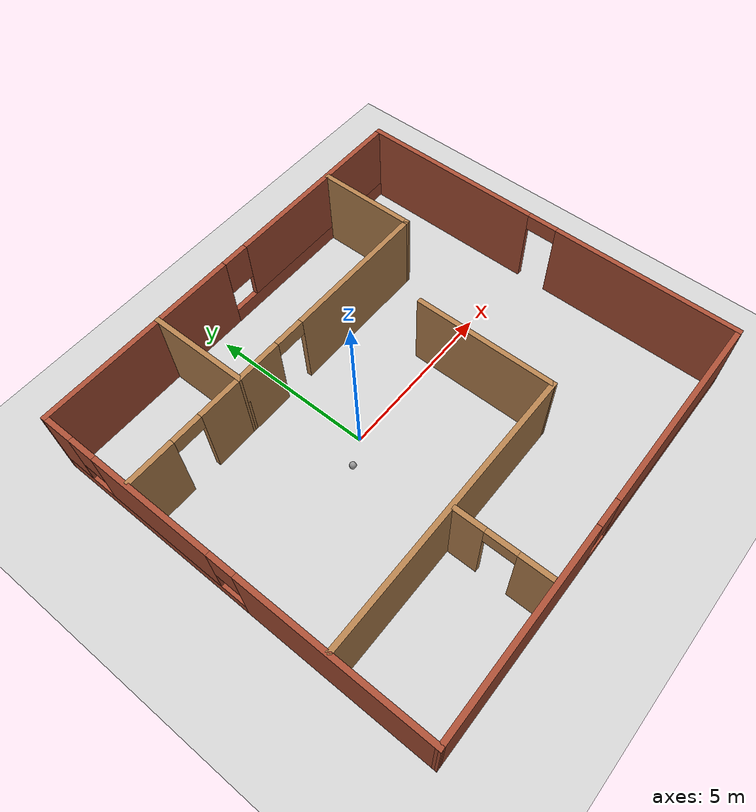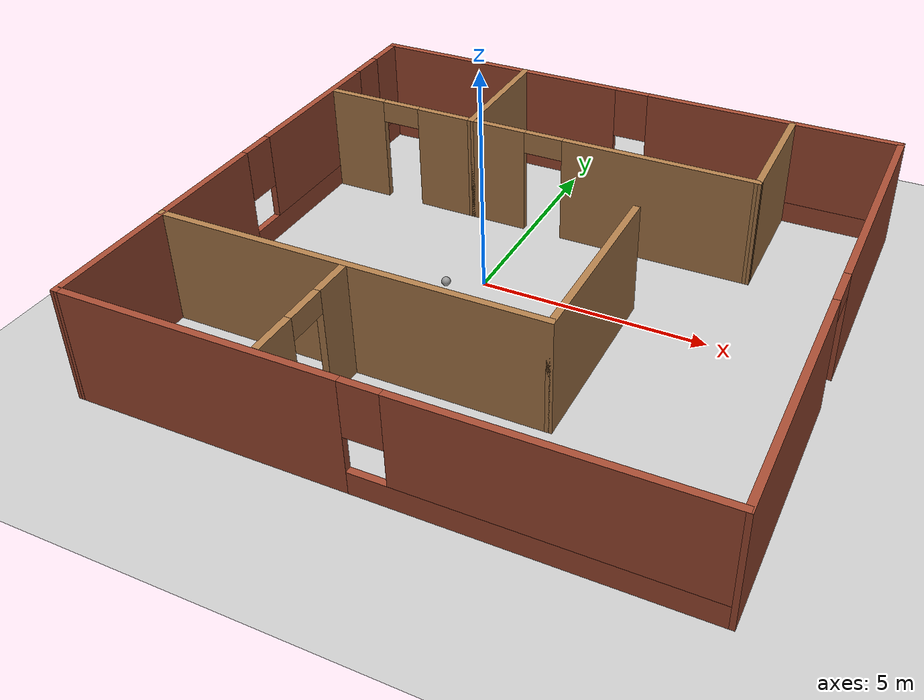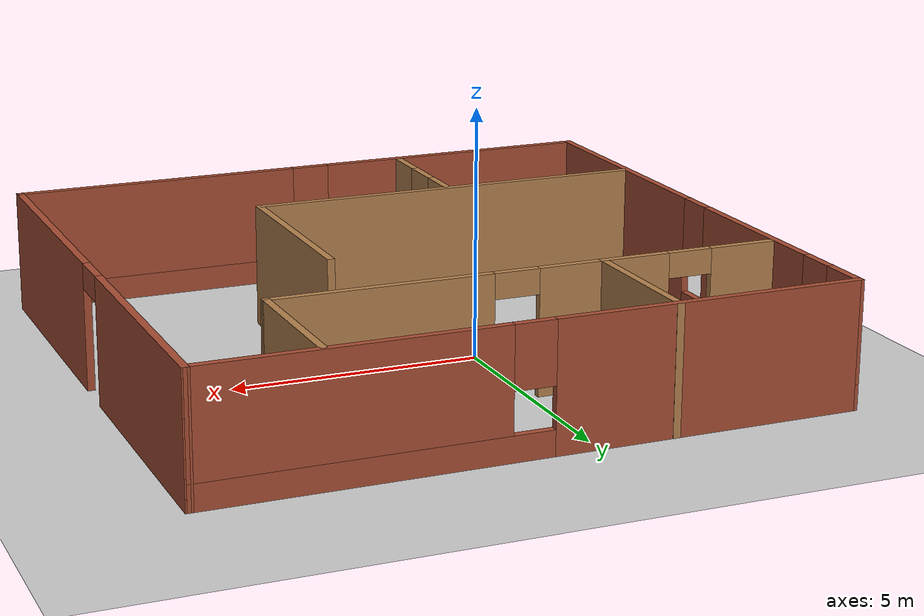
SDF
<sdf version="1.6">
 <world name="default">
  <light name="sun" type="directional">
   <pose>0 0 10 0 -0 0</pose>
   <diffuse>0.8 0.8 0.8 1</diffuse>
   <specular>0.2 0.2 0.2 1</specular>
   <attenuation>
    <range>1000</range>
    <constant>0.9</constant>
    <linear>0.01</linear>
    <quadratic>0.001</quadratic>
   </attenuation>
   <direction>-0.5 0.1 -0.9</direction>
  </light>
  <model name="ground_plane">
   <static>1</static>
   <link name="link">
    <collision name="collision">
     <geometry><plane><normal>0 0 1</normal><size>100 100</size></plane></geometry>
     <surface><friction><ode><mu>100</mu><mu2>50</mu2></ode></friction></surface>
    </collision>
    <visual name="visual">
     <cast_shadows>0</cast_shadows>
     <geometry><plane><normal>0 0 1</normal><size>100 100</size></plane></geometry>
     <material>
      <script><uri>file://media/materials/scripts/gazebo.material</uri><name>Gazebo/Grey</name></script>
     </material>
    </visual>
   </link>
  </model>
  <gravity>0 0 -9.8</gravity>
  <magnetic_field>6e-06 2.3e-05 -4.2e-05</magnetic_field>
  <atmosphere type="adiabatic"/>
  <physics name="default_physics" default="0" type="ode">
   <max_step_size>0.001</max_step_size>
   <real_time_factor>1</real_time_factor>
   <real_time_update_rate>1000</real_time_update_rate>
  </physics>
  <scene><ambient>0.4 0.4 0.4 1</ambient><background>0.7 0.7 0.7 1</background><shadows>1</shadows></scene>
  <spherical_coordinates>
   <surface_model>EARTH_WGS84</surface_model>
   <latitude_deg>0</latitude_deg>
   <longitude_deg>0</longitude_deg>
   <elevation>0</elevation>
   <heading_deg>0</heading_deg>
  </spherical_coordinates>
  <model name="new_world">
   <pose>1.12409 -0.574454 0 0 -0 0</pose>
   <link name="Wall_0">
    <pose>-6.31701 -0.025102 0 0 -0 1.5708</pose>
    <visual name="Wall_0_Visual_0">
     <pose>-3.18031 0 1.25 0 -0 0</pose>
     <geometry><box><size>5.63937 0.15 2.5</size></box></geometry>
     <material>
      <script><uri>file://media/materials/scripts/gazebo.material</uri><name>Gazebo/Bricks</name></script>
      <ambient>1 1 1 1</ambient>
     </material>
     <meta><layer>0</layer></meta>
    </visual>
    <collision name="Wall_0_Collision_0">
     <geometry><box><size>5.63937 0.15 2.5</size></box></geometry>
     <pose>-3.18031 0 1.25 0 -0 0</pose>
    </collision>
    <visual name="Wall_0_Visual_1">
     <pose>2.81969 0 0.25 0 -0 0</pose>
     <geometry><box><size>6.36063 0.15 0.5</size></box></geometry>
     <material>
      <script><uri>file://media/materials/scripts/gazebo.material</uri><name>Gazebo/Bricks</name></script>
      <ambient>1 1 1 1</ambient>
     </material>
     <meta><layer>0</layer></meta>
    </visual>
    <collision name="Wall_0_Collision_1">
     <geometry><box><size>6.36063 0.15 0.5</size></box></geometry>
     <pose>2.81969 0 0.25 0 -0 0</pose>
    </collision>
    <visual name="Wall_0_Visual_2">
     <pose>2.31369 0 1.5 0 -0 0</pose>
     <geometry><box><size>3.74863 0.15 2</size></box></geometry>
     <material>
      <script><uri>file://media/materials/scripts/gazebo.material</uri><name>Gazebo/Bricks</name></script>
      <ambient>1 1 1 1</ambient>
     </material>
     <meta><layer>0</layer></meta>
    </visual>
    <collision name="Wall_0_Collision_2">
     <geometry><box><size>3.74863 0.15 2</size></box></geometry>
     <pose>2.31369 0 1.5 0 -0 0</pose>
    </collision>
    <visual name="Wall_0_Visual_3">
     <pose>5.494 0 1.5 0 -0 0</pose>
     <geometry><box><size>1.012 0.15 2</size></box></geometry>
     <material>
      <script><uri>file://media/materials/scripts/gazebo.material</uri><name>Gazebo/Bricks</name></script>
      <ambient>1 1 1 1</ambient>
     </material>
     <meta><layer>0</layer></meta>
    </visual>
    <collision name="Wall_0_Collision_3">
     <geometry><box><size>1.012 0.15 2</size></box></geometry>
     <pose>5.494 0 1.5 0 -0 0</pose>
    </collision>
    <visual name="Wall_0_Visual_4">
     <pose>0.039369 0 1.9 0 -0 0</pose>
     <geometry><box><size>0.8 0.15 1.2</size></box></geometry>
     <material>
      <script><uri>file://media/materials/scripts/gazebo.material</uri><name>Gazebo/Bricks</name></script>
      <ambient>1 1 1 1</ambient>
     </material>
     <meta><layer>0</layer></meta>
    </visual>
    <collision name="Wall_0_Collision_4">
     <geometry><box><size>0.8 0.15 1.2</size></box></geometry>
     <pose>0.039369 0 1.9 0 -0 0</pose>
    </collision>
    <visual name="Wall_0_Visual_5">
     <pose>4.588 0 1.9 0 -0 0</pose>
     <geometry><box><size>0.8 0.15 1.2</size></box></geometry>
     <material>
      <script><uri>file://media/materials/scripts/gazebo.material</uri><name>Gazebo/Bricks</name></script>
      <ambient>1 1 1 1</ambient>
     </material>
     <meta><layer>0</layer></meta>
    </visual>
    <collision name="Wall_0_Collision_5">
     <geometry><box><size>0.8 0.15 1.2</size></box></geometry>
     <pose>4.588 0 1.9 0 -0 0</pose>
    </collision>
   </link>
   <link name="Wall_10">
    <pose>-4.42868 3.04669 0 0 -0 0</pose>
    <visual name="Wall_10_Visual_0">
     <pose>-1.16226 0 1.25 0 -0 0</pose>
     <geometry><box><size>1.42548 0.15 2.5</size></box></geometry>
     <material>
      <script><uri>file://media/materials/scripts/gazebo.material</uri><name>Gazebo/Wood</name></script>
      <ambient>1 1 1 1</ambient>
     </material>
     <meta><layer>0</layer></meta>
    </visual>
    <collision name="Wall_10_Collision_0">
     <geometry><box><size>1.42548 0.15 2.5</size></box></geometry>
     <pose>-1.16226 0 1.25 0 -0 0</pose>
    </collision>
    <visual name="Wall_10_Visual_1">
     <pose>1.16274 0 1.25 0 -0 0</pose>
     <geometry><box><size>1.42452 0.15 2.5</size></box></geometry>
     <material>
      <script><uri>file://media/materials/scripts/gazebo.material</uri><name>Gazebo/Wood</name></script>
      <ambient>1 1 1 1</ambient>
     </material>
     <meta><layer>0</layer></meta>
    </visual>
    <collision name="Wall_10_Collision_1">
     <geometry><box><size>1.42452 0.15 2.5</size></box></geometry>
     <pose>1.16274 0 1.25 0 -0 0</pose>
    </collision>
    <visual name="Wall_10_Visual_2">
     <pose>0.000478 0 2.25 0 -0 0</pose>
     <geometry><box><size>0.9 0.15 0.5</size></box></geometry>
     <material>
      <script><uri>file://media/materials/scripts/gazebo.material</uri><name>Gazebo/Wood</name></script>
      <ambient>1 1 1 1</ambient>
     </material>
     <meta><layer>0</layer></meta>
    </visual>
    <collision name="Wall_10_Collision_2">
     <geometry><box><size>0.9 0.15 0.5</size></box></geometry>
     <pose>0.000478 0 2.25 0 -0 0</pose>
    </collision>
   </link>
   <link name="Wall_12">
    <collision name="Wall_12_Collision">
     <geometry><box><size>8.5 0.15 2.5</size></box></geometry>
     <pose>0 0 1.25 0 -0 0</pose>
    </collision>
    <visual name="Wall_12_Visual">
     <pose>0 0 1.25 0 -0 0</pose>
     <geometry><box><size>8.5 0.15 2.5</size></box></geometry>
     <material>
      <script><uri>file://media/materials/scripts/gazebo.material</uri><name>Gazebo/Wood</name></script>
      <ambient>1 1 1 1</ambient>
     </material>
     <meta><layer>0</layer></meta>
    </visual>
    <pose>-2.13348 -3.07136 0 0 -0 0</pose>
   </link>
   <link name="Wall_13">
    <collision name="Wall_13_Collision">
     <geometry><box><size>4.25 0.15 2.5</size></box></geometry>
     <pose>0 0 1.25 0 -0 0</pose>
    </collision>
    <visual name="Wall_13_Visual">
     <pose>0 0 1.25 0 -0 0</pose>
     <geometry><box><size>4.25 0.15 2.5</size></box></geometry>
     <material>
      <script><uri>file://media/materials/scripts/gazebo.material</uri><name>Gazebo/Wood</name></script>
      <ambient>1 1 1 1</ambient>
     </material>
     <meta><layer>0</layer></meta>
    </visual>
    <pose>2.04152 -1.02136 0 0 -0 1.5708</pose>
   </link>
   <link name="Wall_15">
    <collision name="Wall_15_Collision">
     <geometry><box><size>3.02284 0.15 2.5</size></box></geometry>
     <pose>0 0 1.25 0 -0 0</pose>
    </collision>
    <visual name="Wall_15_Visual">
     <pose>0 0 1.25 0 -0 0</pose>
     <geometry><box><size>3.02284 0.15 2.5</size></box></geometry>
     <material>
      <script><uri>file://media/materials/scripts/gazebo.material</uri><name>Gazebo/Wood</name></script>
      <ambient>1 1 1 1</ambient>
     </material>
     <meta><layer>0</layer></meta>
    </visual>
    <pose>-2.63316 4.4831 0 0 0 -1.56767</pose>
   </link>
   <link name="Wall_17">
    <pose>-2.10565 -4.47776 0 0 0 -1.5708</pose>
    <visual name="Wall_17_Visual_0">
     <pose>-0.924095 0 1.25 0 -0 0</pose>
     <geometry><box><size>0.90181 0.15 2.5</size></box></geometry>
     <material>
      <script><uri>file://media/materials/scripts/gazebo.material</uri><name>Gazebo/Wood</name></script>
      <ambient>1 1 1 1</ambient>
     </material>
     <meta><layer>0</layer></meta>
    </visual>
    <collision name="Wall_17_Collision_0">
     <geometry><box><size>0.90181 0.15 2.5</size></box></geometry>
     <pose>-0.924095 0 1.25 0 -0 0</pose>
    </collision>
    <visual name="Wall_17_Visual_1">
     <pose>0.900905 0 1.25 0 -0 0</pose>
     <geometry><box><size>0.94819 0.15 2.5</size></box></geometry>
     <material>
      <script><uri>file://media/materials/scripts/gazebo.material</uri><name>Gazebo/Wood</name></script>
      <ambient>1 1 1 1</ambient>
     </material>
     <meta><layer>0</layer></meta>
    </visual>
    <collision name="Wall_17_Collision_1">
     <geometry><box><size>0.94819 0.15 2.5</size></box></geometry>
     <pose>0.900905 0 1.25 0 -0 0</pose>
    </collision>
    <visual name="Wall_17_Visual_2">
     <pose>-0.02319 0 2.25 0 -0 0</pose>
     <geometry><box><size>0.9 0.15 0.5</size></box></geometry>
     <material>
      <script><uri>file://media/materials/scripts/gazebo.material</uri><name>Gazebo/Wood</name></script>
      <ambient>1 1 1 1</ambient>
     </material>
     <meta><layer>0</layer></meta>
    </visual>
    <collision name="Wall_17_Collision_2">
     <geometry><box><size>0.9 0.15 0.5</size></box></geometry>
     <pose>-0.02319 0 2.25 0 -0 0</pose>
    </collision>
   </link>
   <link name="Wall_19">
    <pose>0.671324 3.04669 0 0 -0 0</pose>
    <visual name="Wall_19_Visual_0">
     <pose>-2.66922 0 1.25 0 -0 0</pose>
     <geometry><box><size>1.41157 0.15 2.5</size></box></geometry>
     <material>
      <script><uri>file://media/materials/scripts/gazebo.material</uri><name>Gazebo/Wood</name></script>
      <ambient>1 1 1 1</ambient>
     </material>
     <meta><layer>0</layer></meta>
    </visual>
    <collision name="Wall_19_Collision_0">
     <geometry><box><size>1.41157 0.15 2.5</size></box></geometry>
     <pose>-2.66922 0 1.25 0 -0 0</pose>
    </collision>
    <visual name="Wall_19_Visual_1">
     <pose>1.15578 0 1.25 0 -0 0</pose>
     <geometry><box><size>4.43843 0.15 2.5</size></box></geometry>
     <material>
      <script><uri>file://media/materials/scripts/gazebo.material</uri><name>Gazebo/Wood</name></script>
      <ambient>1 1 1 1</ambient>
     </material>
     <meta><layer>0</layer></meta>
    </visual>
    <collision name="Wall_19_Collision_1">
     <geometry><box><size>4.43843 0.15 2.5</size></box></geometry>
     <pose>1.15578 0 1.25 0 -0 0</pose>
    </collision>
    <visual name="Wall_19_Visual_2">
     <pose>-1.51343 0 2.25 0 -0 0</pose>
     <geometry><box><size>0.9 0.15 0.5</size></box></geometry>
     <material>
      <script><uri>file://media/materials/scripts/gazebo.material</uri><name>Gazebo/Wood</name></script>
      <ambient>1 1 1 1</ambient>
     </material>
     <meta><layer>0</layer></meta>
    </visual>
    <collision name="Wall_19_Collision_2">
     <geometry><box><size>0.9 0.15 0.5</size></box></geometry>
     <pose>-1.51343 0 2.25 0 -0 0</pose>
    </collision>
   </link>
   <link name="Wall_2">
    <pose>6.31731 0.025102 0 0 0 -1.5708</pose>
    <visual name="Wall_2_Visual_0">
     <pose>-3.24818 0 1.25 0 -0 0</pose>
     <geometry><box><size>5.50364 0.15 2.5</size></box></geometry>
     <material>
      <script><uri>file://media/materials/scripts/gazebo.material</uri><name>Gazebo/Bricks</name></script>
      <ambient>1 1 1 1</ambient>
     </material>
     <meta><layer>0</layer></meta>
    </visual>
    <collision name="Wall_2_Collision_0">
     <geometry><box><size>5.50364 0.15 2.5</size></box></geometry>
     <pose>-3.24818 0 1.25 0 -0 0</pose>
    </collision>
    <visual name="Wall_2_Visual_1">
     <pose>3.20182 0 1.25 0 -0 0</pose>
     <geometry><box><size>5.59636 0.15 2.5</size></box></geometry>
     <material>
      <script><uri>file://media/materials/scripts/gazebo.material</uri><name>Gazebo/Bricks</name></script>
      <ambient>1 1 1 1</ambient>
     </material>
     <meta><layer>0</layer></meta>
    </visual>
    <collision name="Wall_2_Collision_1">
     <geometry><box><size>5.59636 0.15 2.5</size></box></geometry>
     <pose>3.20182 0 1.25 0 -0 0</pose>
    </collision>
    <visual name="Wall_2_Visual_2">
     <pose>-0.046356 0 2.25 0 -0 0</pose>
     <geometry><box><size>0.9 0.15 0.5</size></box></geometry>
     <material>
      <script><uri>file://media/materials/scripts/gazebo.material</uri><name>Gazebo/Bricks</name></script>
      <ambient>1 1 1 1</ambient>
     </material>
     <meta><layer>0</layer></meta>
    </visual>
    <collision name="Wall_2_Collision_2">
     <geometry><box><size>0.9 0.15 0.5</size></box></geometry>
     <pose>-0.046356 0 2.25 0 -0 0</pose>
    </collision>
   </link>
   <link name="Wall_21">
    <collision name="Wall_21_Collision">
     <geometry><box><size>2.97877 0.15 2.5</size></box></geometry>
     <pose>0 0 1.25 0 -0 0</pose>
    </collision>
    <visual name="Wall_21_Visual">
     <pose>0 0 1.25 0 -0 0</pose>
     <geometry><box><size>2.97877 0.15 2.5</size></box></geometry>
     <material>
      <script><uri>file://media/materials/scripts/gazebo.material</uri><name>Gazebo/Wood</name></script>
      <ambient>1 1 1 1</ambient>
     </material>
     <meta><layer>0</layer></meta>
    </visual>
    <pose>3.96038 4.46103 0 0 0 -1.56306</pose>
   </link>
   <link name="Wall_4">
    <pose>-0.015146 -5.925 0 0 -0 0.003983</pose>
    <visual name="Wall_4_Visual_0">
     <pose>-3.40114 0 1.25 0 -0 0</pose>
     <geometry><box><size>5.95154 0.15 2.5</size></box></geometry>
     <material>
      <script><uri>file://media/materials/scripts/gazebo.material</uri><name>Gazebo/Bricks</name></script>
      <ambient>1 1 1 1</ambient>
     </material>
     <meta><layer>0</layer></meta>
    </visual>
    <collision name="Wall_4_Collision_0">
     <geometry><box><size>5.95154 0.15 2.5</size></box></geometry>
     <pose>-3.40114 0 1.25 0 -0 0</pose>
    </collision>
    <visual name="Wall_4_Visual_1">
     <pose>2.97577 0 0.25 0 -0 0</pose>
     <geometry><box><size>6.80229 0.15 0.5</size></box></geometry>
     <material>
      <script><uri>file://media/materials/scripts/gazebo.material</uri><name>Gazebo/Bricks</name></script>
      <ambient>1 1 1 1</ambient>
     </material>
     <meta><layer>0</layer></meta>
    </visual>
    <collision name="Wall_4_Collision_1">
     <geometry><box><size>6.80229 0.15 0.5</size></box></geometry>
     <pose>2.97577 0 0.25 0 -0 0</pose>
    </collision>
    <visual name="Wall_4_Visual_2">
     <pose>3.37577 0 1.5 0 -0 0</pose>
     <geometry><box><size>6.00229 0.15 2</size></box></geometry>
     <material>
      <script><uri>file://media/materials/scripts/gazebo.material</uri><name>Gazebo/Bricks</name></script>
      <ambient>1 1 1 1</ambient>
     </material>
     <meta><layer>0</layer></meta>
    </visual>
    <collision name="Wall_4_Collision_2">
     <geometry><box><size>6.00229 0.15 2</size></box></geometry>
     <pose>3.37577 0 1.5 0 -0 0</pose>
    </collision>
    <visual name="Wall_4_Visual_3">
     <pose>-0.025373 0 1.9 0 -0 0</pose>
     <geometry><box><size>0.8 0.15 1.2</size></box></geometry>
     <material>
      <script><uri>file://media/materials/scripts/gazebo.material</uri><name>Gazebo/Bricks</name></script>
      <ambient>1 1 1 1</ambient>
     </material>
     <meta><layer>0</layer></meta>
    </visual>
    <collision name="Wall_4_Collision_3">
     <geometry><box><size>0.8 0.15 1.2</size></box></geometry>
     <pose>-0.025373 0 1.9 0 -0 0</pose>
    </collision>
   </link>
   <link name="Wall_6">
    <pose>-0.015146 5.925 0 0 -0 0.003983</pose>
    <visual name="Wall_6_Visual_0">
     <pose>-3.31031 0 1.25 0 -0 0</pose>
     <geometry><box><size>6.13321 0.15 2.5</size></box></geometry>
     <material>
      <script><uri>file://media/materials/scripts/gazebo.material</uri><name>Gazebo/Bricks</name></script>
      <ambient>1 1 1 1</ambient>
     </material>
     <meta><layer>0</layer></meta>
    </visual>
    <collision name="Wall_6_Collision_0">
     <geometry><box><size>6.13321 0.15 2.5</size></box></geometry>
     <pose>-3.31031 0 1.25 0 -0 0</pose>
    </collision>
    <visual name="Wall_6_Visual_1">
     <pose>3.06661 0 0.25 0 -0 0</pose>
     <geometry><box><size>6.62061 0.15 0.5</size></box></geometry>
     <material>
      <script><uri>file://media/materials/scripts/gazebo.material</uri><name>Gazebo/Bricks</name></script>
      <ambient>1 1 1 1</ambient>
     </material>
     <meta><layer>0</layer></meta>
    </visual>
    <collision name="Wall_6_Collision_1">
     <geometry><box><size>6.62061 0.15 0.5</size></box></geometry>
     <pose>3.06661 0 0.25 0 -0 0</pose>
    </collision>
    <visual name="Wall_6_Visual_2">
     <pose>3.46661 0 1.5 0 -0 0</pose>
     <geometry><box><size>5.82061 0.15 2</size></box></geometry>
     <material>
      <script><uri>file://media/materials/scripts/gazebo.material</uri><name>Gazebo/Bricks</name></script>
      <ambient>1 1 1 1</ambient>
     </material>
     <meta><layer>0</layer></meta>
    </visual>
    <collision name="Wall_6_Collision_2">
     <geometry><box><size>5.82061 0.15 2</size></box></geometry>
     <pose>3.46661 0 1.5 0 -0 0</pose>
    </collision>
    <visual name="Wall_6_Visual_3">
     <pose>0.1563 0 1.9 0 -0 0</pose>
     <geometry><box><size>0.8 0.15 1.2</size></box></geometry>
     <material>
      <script><uri>file://media/materials/scripts/gazebo.material</uri><name>Gazebo/Bricks</name></script>
      <ambient>1 1 1 1</ambient>
     </material>
     <meta><layer>0</layer></meta>
    </visual>
    <collision name="Wall_6_Collision_3">
     <geometry><box><size>0.8 0.15 1.2</size></box></geometry>
     <pose>0.1563 0 1.9 0 -0 0</pose>
    </collision>
   </link>
   <static>1</static>
  </model>
  <model name="my_ball">
   <link name="link_0">
    <inertial>
     <mass>1</mass>
     <inertia><ixx>0.1</ixx><ixy>0</ixy><ixz>0</ixz><iyy>0.1</iyy><iyz>0</iyz><izz>0.1</izz></inertia>
    </inertial>
    <visual name="visual">
     <geometry><sphere><radius>0.1</radius></sphere></geometry>
     <material>
      <lighting>1</lighting>
      <script><uri>file://media/materials/scripts/gazebo.material</uri><name>Gazebo/Grey</name></script>
      <shader type="pixel"><normal_map>__default__</normal_map></shader>
      <ambient>1 1 1 1</ambient>
      <diffuse>1 1 1 1</diffuse>
      <specular>1 1 1 1</specular>
      <emissive>1 1 1 1</emissive>
     </material>
    </visual>
    <collision name="collision">
     <geometry><sphere><radius>0.1</radius></sphere></geometry>
     <surface>
      <friction>
       <ode><mu>1</mu><mu2>1</mu2><fdir1>0 0 0</fdir1><slip1>0</slip1><slip2>0</slip2></ode>
       <torsional>
        <coefficient>1</coefficient>
        <patch_radius>0</patch_radius>
        <surface_radius>0</surface_radius>
        <use_patch_radius>1</use_patch_radius>
        <ode><slip>0</slip></ode>
       </torsional>
      </friction>
      <bounce><restitution_coefficient>0</restitution_coefficient><threshold>1e+06</threshold></bounce>
      <contact>
       <collide_without_contact>0</collide_without_contact>
       <collide_without_contact_bitmask>1</collide_without_contact_bitmask>
       <collide_bitmask>1</collide_bitmask>
       <ode>
        <soft_cfm>0</soft_cfm>
        <soft_erp>0.2</soft_erp>
        <kp>1e+13</kp>
        <kd>1</kd>
        <max_vel>0.01</max_vel>
        <min_depth>0</min_depth>
       </ode>
       <bullet>
        <split_impulse>1</split_impulse>
        <split_impulse_penetration_threshold>-0.01</split_impulse_penetration_threshold>
        <soft_cfm>0</soft_cfm>
        <soft_erp>0.2</soft_erp>
        <kp>1e+13</kp>
        <kd>1</kd>
       </bullet>
      </contact>
     </surface>
    </collision>
   </link>
   <static>0</static>
   <pose>-0.729205 -0.370524 0.1 -2.70252 0.611325 1.29144</pose>
  </model>
 </world>
</sdf>
